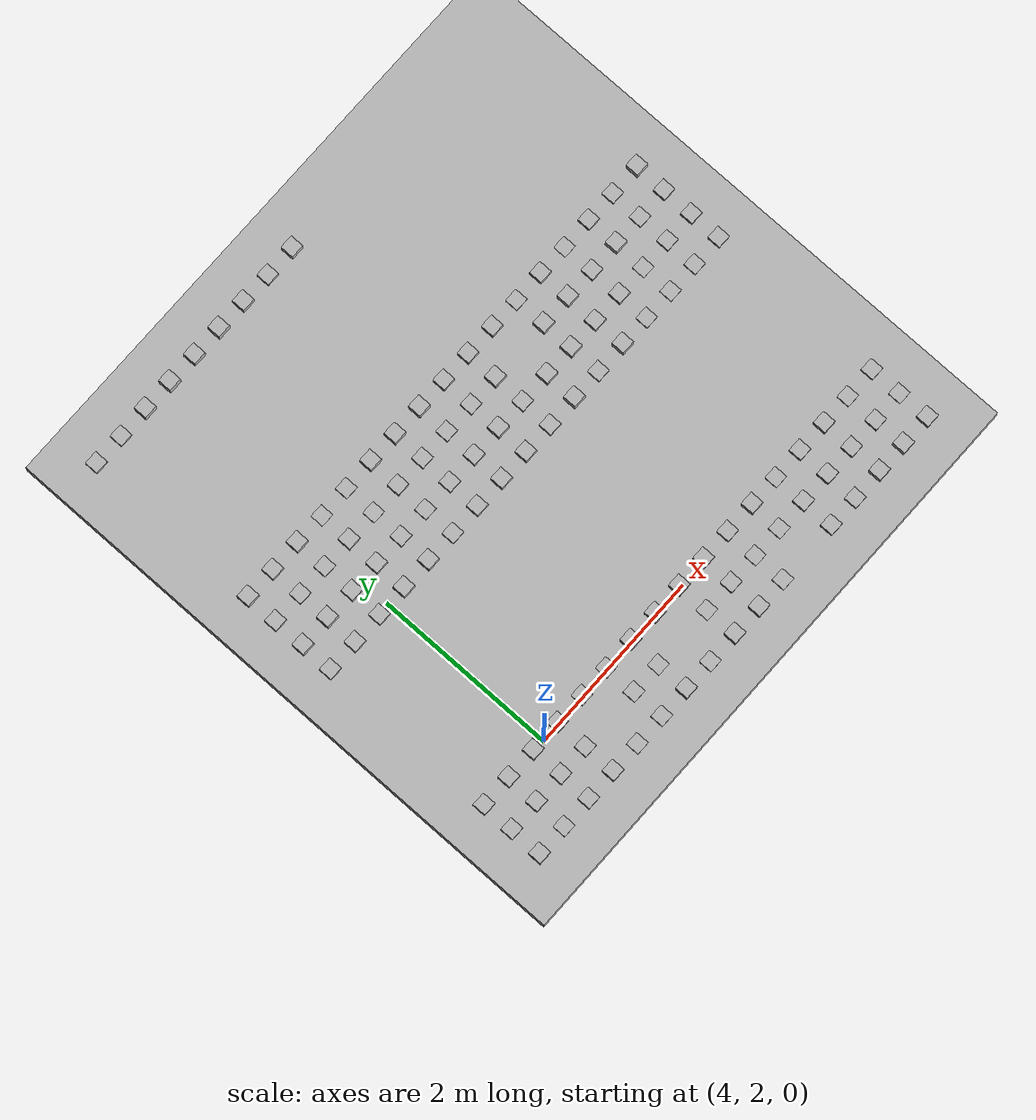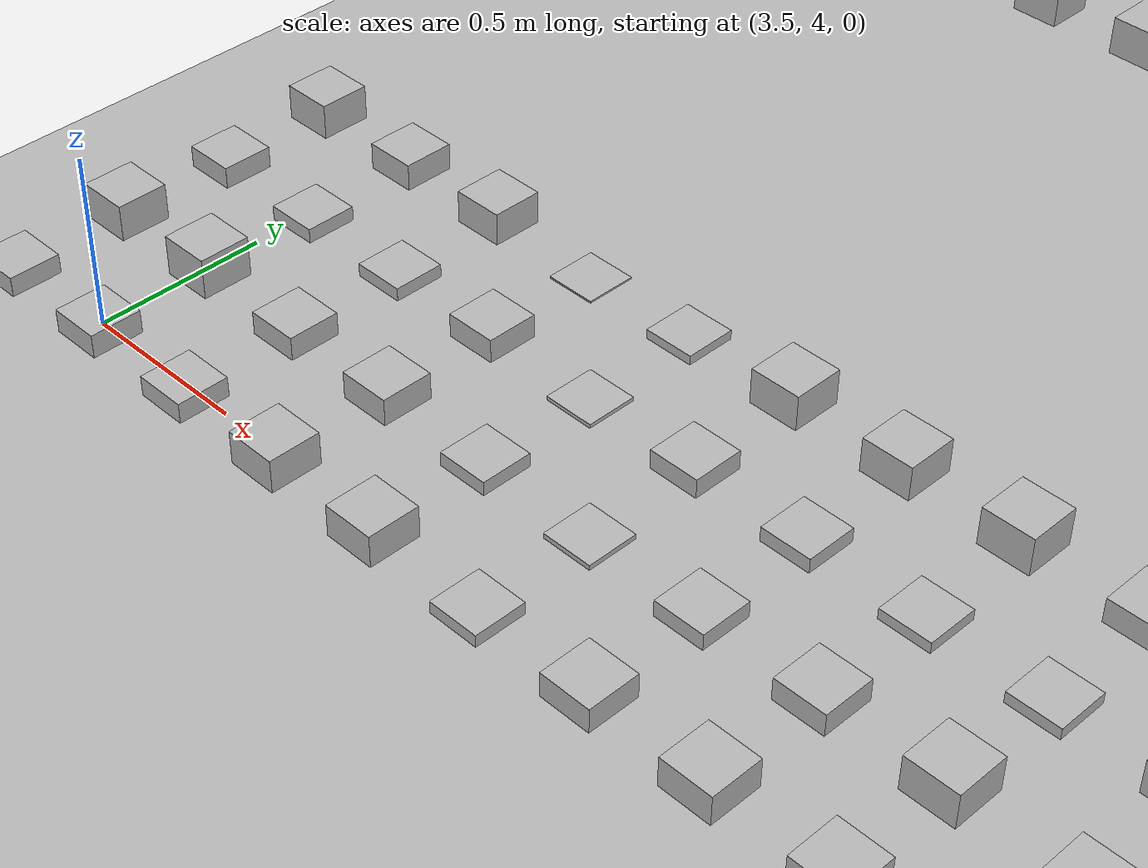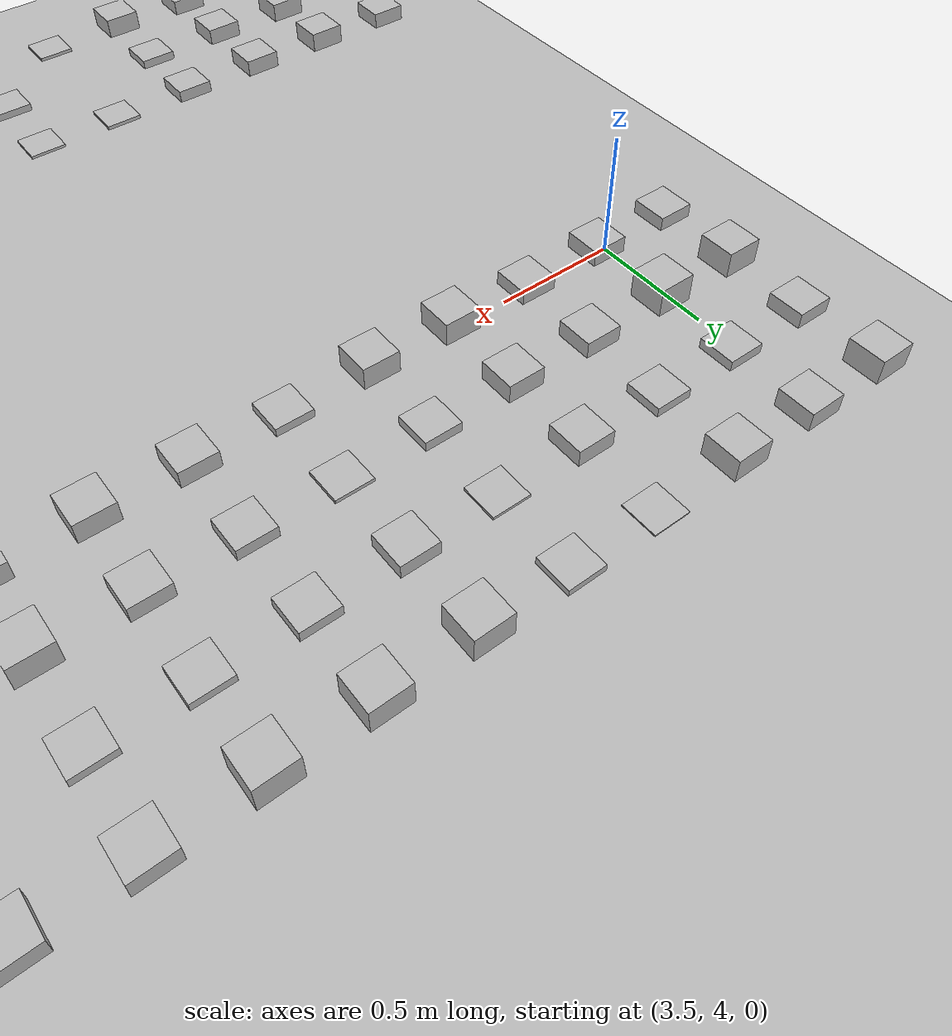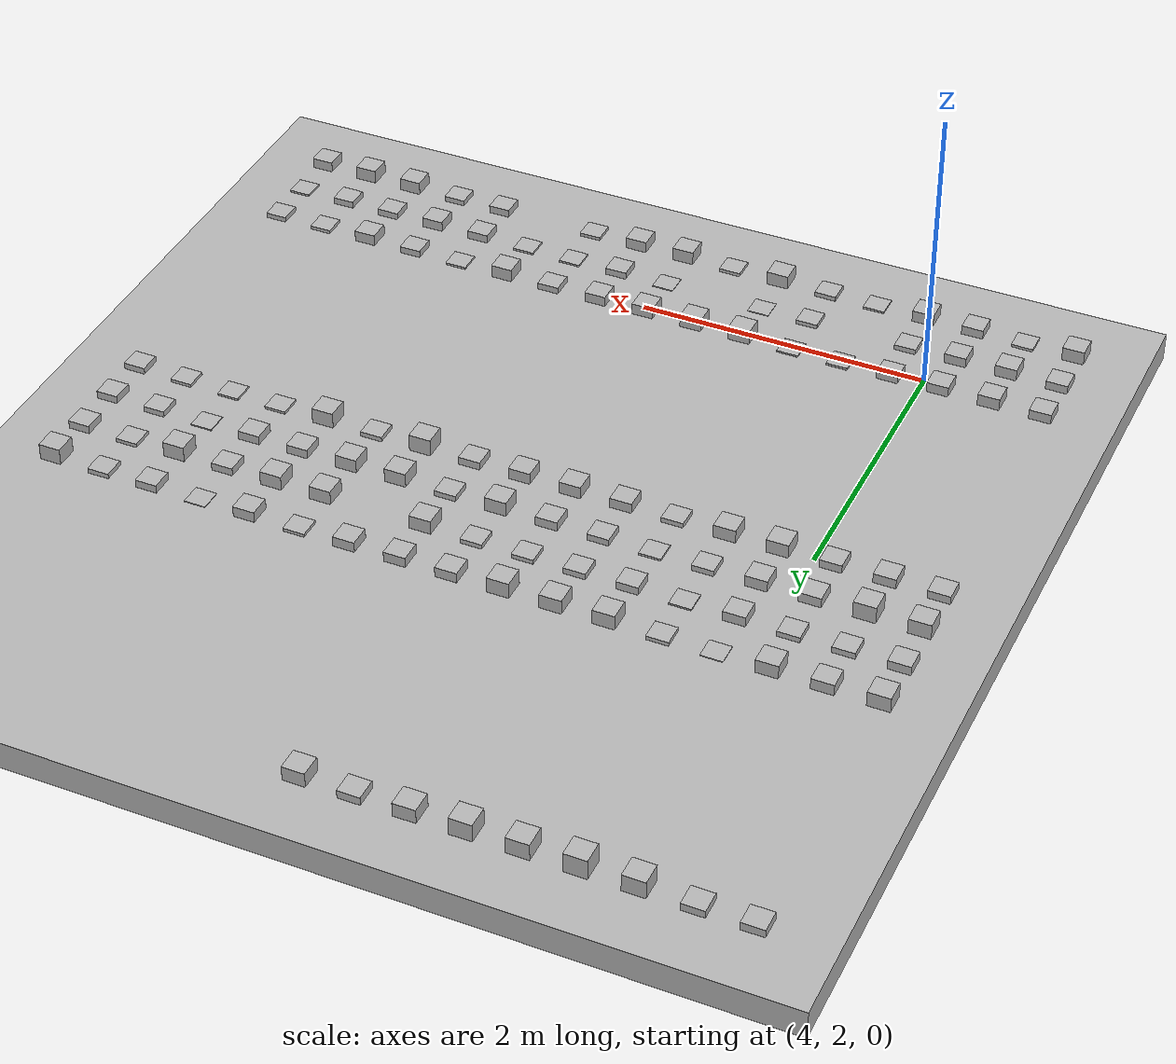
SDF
<sdf version="1.6">
 <world name="ugv_rough">
  <model name="ground">
   <static>true</static>
   <link name="l">
    <collision name="c"><geometry><box><size>60 60 0.2</size></box></geometry></collision>
    <visual name="v"><geometry><box><size>60 60 0.2</size></box></geometry></visual>
    <pose>0 0 -0.1 0 0 0</pose>
   </link>
  </model>
  <model name="r4_1">
   <static>true</static>
   <pose>3.175 1.325 0.0488 0 0 0</pose>
   <link name="l">
    <collision name="c"><geometry><box><size>0.15 0.15 0.09761073344853062</size></box></geometry></collision>
    <visual name="v"><geometry><box><size>0.15 0.15 0.09761073344853062</size></box></geometry></visual>
   </link>
  </model>
  <model name="r4_2">
   <static>true</static>
   <pose>3.175 1.675 0.0307 0 0 0</pose>
   <link name="l">
    <collision name="c"><geometry><box><size>0.15 0.15 0.06132800246752349</size></box></geometry></collision>
    <visual name="v"><geometry><box><size>0.15 0.15 0.06132800246752349</size></box></geometry></visual>
   </link>
  </model>
  <model name="r4_3">
   <static>true</static>
   <pose>3.175 2.025 0.0347 0 0 0</pose>
   <link name="l">
    <collision name="c"><geometry><box><size>0.15 0.15 0.0693042327978836</size></box></geometry></collision>
    <visual name="v"><geometry><box><size>0.15 0.15 0.0693042327978836</size></box></geometry></visual>
   </link>
  </model>
  <model name="r4_5">
   <static>true</static>
   <pose>3.525 1.325 0.0094 0 0 0</pose>
   <link name="l">
    <collision name="c"><geometry><box><size>0.15 0.15 0.01878115666855116</size></box></geometry></collision>
    <visual name="v"><geometry><box><size>0.15 0.15 0.01878115666855116</size></box></geometry></visual>
   </link>
  </model>
  <model name="r4_6">
   <static>true</static>
   <pose>3.525 1.675 0.0415 0 0 0</pose>
   <link name="l">
    <collision name="c"><geometry><box><size>0.15 0.15 0.08301218741450012</size></box></geometry></collision>
    <visual name="v"><geometry><box><size>0.15 0.15 0.08301218741450012</size></box></geometry></visual>
   </link>
  </model>
  <model name="r4_7">
   <static>true</static>
   <pose>3.525 2.025 0.0422 0 0 0</pose>
   <link name="l">
    <collision name="c"><geometry><box><size>0.15 0.15 0.08449241651217704</size></box></geometry></collision>
    <visual name="v"><geometry><box><size>0.15 0.15 0.08449241651217704</size></box></geometry></visual>
   </link>
  </model>
  <model name="r4_9">
   <static>true</static>
   <pose>3.875 1.325 0.0325 0 0 0</pose>
   <link name="l">
    <collision name="c"><geometry><box><size>0.15 0.15 0.06505169872996391</size></box></geometry></collision>
    <visual name="v"><geometry><box><size>0.15 0.15 0.06505169872996391</size></box></geometry></visual>
   </link>
  </model>
  <model name="r4_10">
   <static>true</static>
   <pose>3.875 1.675 0.0350 0 0 0</pose>
   <link name="l">
    <collision name="c"><geometry><box><size>0.15 0.15 0.07003316191510263</size></box></geometry></collision>
    <visual name="v"><geometry><box><size>0.15 0.15 0.07003316191510263</size></box></geometry></visual>
   </link>
  </model>
  <model name="r4_11">
   <static>true</static>
   <pose>3.875 2.025 0.0358 0 0 0</pose>
   <link name="l">
    <collision name="c"><geometry><box><size>0.15 0.15 0.07150339547653067</size></box></geometry></collision>
    <visual name="v"><geometry><box><size>0.15 0.15 0.07150339547653067</size></box></geometry></visual>
   </link>
  </model>
  <model name="r4_13">
   <static>true</static>
   <pose>4.225 1.325 0.0423 0 0 0</pose>
   <link name="l">
    <collision name="c"><geometry><box><size>0.15 0.15 0.08451978833841939</size></box></geometry></collision>
    <visual name="v"><geometry><box><size>0.15 0.15 0.08451978833841939</size></box></geometry></visual>
   </link>
  </model>
  <model name="r4_14">
   <static>true</static>
   <pose>4.225 1.675 0.0185 0 0 0</pose>
   <link name="l">
    <collision name="c"><geometry><box><size>0.15 0.15 0.03695849781386673</size></box></geometry></collision>
    <visual name="v"><geometry><box><size>0.15 0.15 0.03695849781386673</size></box></geometry></visual>
   </link>
  </model>
  <model name="r4_15">
   <static>true</static>
   <pose>4.225 2.025 0.0253 0 0 0</pose>
   <link name="l">
    <collision name="c"><geometry><box><size>0.15 0.15 0.050561499026373816</size></box></geometry></collision>
    <visual name="v"><geometry><box><size>0.15 0.15 0.050561499026373816</size></box></geometry></visual>
   </link>
  </model>
  <model name="r4_17">
   <static>true</static>
   <pose>4.575 1.325 0.0072 0 0 0</pose>
   <link name="l">
    <collision name="c"><geometry><box><size>0.15 0.15 0.014319015826691817</size></box></geometry></collision>
    <visual name="v"><geometry><box><size>0.15 0.15 0.014319015826691817</size></box></geometry></visual>
   </link>
  </model>
  <model name="r4_19">
   <static>true</static>
   <pose>4.575 2.025 0.0077 0 0 0</pose>
   <link name="l">
    <collision name="c"><geometry><box><size>0.15 0.15 0.015341588178909328</size></box></geometry></collision>
    <visual name="v"><geometry><box><size>0.15 0.15 0.015341588178909328</size></box></geometry></visual>
   </link>
  </model>
  <model name="r4_21">
   <static>true</static>
   <pose>4.925 1.325 0.0162 0 0 0</pose>
   <link name="l">
    <collision name="c"><geometry><box><size>0.15 0.15 0.03246336983988545</size></box></geometry></collision>
    <visual name="v"><geometry><box><size>0.15 0.15 0.03246336983988545</size></box></geometry></visual>
   </link>
  </model>
  <model name="r4_22">
   <static>true</static>
   <pose>4.925 1.675 0.0151 0 0 0</pose>
   <link name="l">
    <collision name="c"><geometry><box><size>0.15 0.15 0.03029175030516511</size></box></geometry></collision>
    <visual name="v"><geometry><box><size>0.15 0.15 0.03029175030516511</size></box></geometry></visual>
   </link>
  </model>
  <model name="r4_23">
   <static>true</static>
   <pose>4.925 2.025 0.0059 0 0 0</pose>
   <link name="l">
    <collision name="c"><geometry><box><size>0.15 0.15 0.011785699745257817</size></box></geometry></collision>
    <visual name="v"><geometry><box><size>0.15 0.15 0.011785699745257817</size></box></geometry></visual>
   </link>
  </model>
  <model name="r4_25">
   <static>true</static>
   <pose>5.275 1.325 0.0484 0 0 0</pose>
   <link name="l">
    <collision name="c"><geometry><box><size>0.15 0.15 0.09680758098639725</size></box></geometry></collision>
    <visual name="v"><geometry><box><size>0.15 0.15 0.09680758098639725</size></box></geometry></visual>
   </link>
  </model>
  <model name="r4_26">
   <static>true</static>
   <pose>5.275 1.675 0.0025 0 0 0</pose>
   <link name="l">
    <collision name="c"><geometry><box><size>0.15 0.15 0.005051541232897139</size></box></geometry></collision>
    <visual name="v"><geometry><box><size>0.15 0.15 0.005051541232897139</size></box></geometry></visual>
   </link>
  </model>
  <model name="r4_27">
   <static>true</static>
   <pose>5.275 2.025 0.0492 0 0 0</pose>
   <link name="l">
    <collision name="c"><geometry><box><size>0.15 0.15 0.09837100378798541</size></box></geometry></collision>
    <visual name="v"><geometry><box><size>0.15 0.15 0.09837100378798541</size></box></geometry></visual>
   </link>
  </model>
  <model name="r4_29">
   <static>true</static>
   <pose>5.625 1.325 0.0124 0 0 0</pose>
   <link name="l">
    <collision name="c"><geometry><box><size>0.15 0.15 0.024743605327022612</size></box></geometry></collision>
    <visual name="v"><geometry><box><size>0.15 0.15 0.024743605327022612</size></box></geometry></visual>
   </link>
  </model>
  <model name="r4_31">
   <static>true</static>
   <pose>5.625 2.025 0.0441 0 0 0</pose>
   <link name="l">
    <collision name="c"><geometry><box><size>0.15 0.15 0.08816507734170083</size></box></geometry></collision>
    <visual name="v"><geometry><box><size>0.15 0.15 0.08816507734170083</size></box></geometry></visual>
   </link>
  </model>
  <model name="r4_33">
   <static>true</static>
   <pose>5.975 1.325 0.0474 0 0 0</pose>
   <link name="l">
    <collision name="c"><geometry><box><size>0.15 0.15 0.0948399003178236</size></box></geometry></collision>
    <visual name="v"><geometry><box><size>0.15 0.15 0.0948399003178236</size></box></geometry></visual>
   </link>
  </model>
  <model name="r4_34">
   <static>true</static>
   <pose>5.975 1.675 0.0029 0 0 0</pose>
   <link name="l">
    <collision name="c"><geometry><box><size>0.15 0.15 0.005851121780149349</size></box></geometry></collision>
    <visual name="v"><geometry><box><size>0.15 0.15 0.005851121780149349</size></box></geometry></visual>
   </link>
  </model>
  <model name="r4_35">
   <static>true</static>
   <pose>5.975 2.025 0.0399 0 0 0</pose>
   <link name="l">
    <collision name="c"><geometry><box><size>0.15 0.15 0.07974936305528121</size></box></geometry></collision>
    <visual name="v"><geometry><box><size>0.15 0.15 0.07974936305528121</size></box></geometry></visual>
   </link>
  </model>
  <model name="r4_37">
   <static>true</static>
   <pose>6.325 1.325 0.0404 0 0 0</pose>
   <link name="l">
    <collision name="c"><geometry><box><size>0.15 0.15 0.0808839406246295</size></box></geometry></collision>
    <visual name="v"><geometry><box><size>0.15 0.15 0.0808839406246295</size></box></geometry></visual>
   </link>
  </model>
  <model name="r4_38">
   <static>true</static>
   <pose>6.325 1.675 0.0246 0 0 0</pose>
   <link name="l">
    <collision name="c"><geometry><box><size>0.15 0.15 0.04910678923283146</size></box></geometry></collision>
    <visual name="v"><geometry><box><size>0.15 0.15 0.04910678923283146</size></box></geometry></visual>
   </link>
  </model>
  <model name="r4_39">
   <static>true</static>
   <pose>6.325 2.025 0.0359 0 0 0</pose>
   <link name="l">
    <collision name="c"><geometry><box><size>0.15 0.15 0.07183875619927152</size></box></geometry></collision>
    <visual name="v"><geometry><box><size>0.15 0.15 0.07183875619927152</size></box></geometry></visual>
   </link>
  </model>
  <model name="r4_41">
   <static>true</static>
   <pose>6.675 1.325 0.0118 0 0 0</pose>
   <link name="l">
    <collision name="c"><geometry><box><size>0.15 0.15 0.02351173718838173</size></box></geometry></collision>
    <visual name="v"><geometry><box><size>0.15 0.15 0.02351173718838173</size></box></geometry></visual>
   </link>
  </model>
  <model name="r4_42">
   <static>true</static>
   <pose>6.675 1.675 0.0066 0 0 0</pose>
   <link name="l">
    <collision name="c"><geometry><box><size>0.15 0.15 0.013179454335673725</size></box></geometry></collision>
    <visual name="v"><geometry><box><size>0.15 0.15 0.013179454335673725</size></box></geometry></visual>
   </link>
  </model>
  <model name="r4_43">
   <static>true</static>
   <pose>6.675 2.025 0.0236 0 0 0</pose>
   <link name="l">
    <collision name="c"><geometry><box><size>0.15 0.15 0.04723554191986851</size></box></geometry></collision>
    <visual name="v"><geometry><box><size>0.15 0.15 0.04723554191986851</size></box></geometry></visual>
   </link>
  </model>
  <model name="r4_46">
   <static>true</static>
   <pose>7.025 1.675 0.0077 0 0 0</pose>
   <link name="l">
    <collision name="c"><geometry><box><size>0.15 0.15 0.015372078110124266</size></box></geometry></collision>
    <visual name="v"><geometry><box><size>0.15 0.15 0.015372078110124266</size></box></geometry></visual>
   </link>
  </model>
  <model name="r4_47">
   <static>true</static>
   <pose>7.025 2.025 0.0459 0 0 0</pose>
   <link name="l">
    <collision name="c"><geometry><box><size>0.15 0.15 0.09186126274153485</size></box></geometry></collision>
    <visual name="v"><geometry><box><size>0.15 0.15 0.09186126274153485</size></box></geometry></visual>
   </link>
  </model>
  <model name="r4_49">
   <static>true</static>
   <pose>7.375 1.325 0.0277 0 0 0</pose>
   <link name="l">
    <collision name="c"><geometry><box><size>0.15 0.15 0.05544157030510064</size></box></geometry></collision>
    <visual name="v"><geometry><box><size>0.15 0.15 0.05544157030510064</size></box></geometry></visual>
   </link>
  </model>
  <model name="r4_50">
   <static>true</static>
   <pose>7.375 1.675 0.0303 0 0 0</pose>
   <link name="l">
    <collision name="c"><geometry><box><size>0.15 0.15 0.060693791006048214</size></box></geometry></collision>
    <visual name="v"><geometry><box><size>0.15 0.15 0.060693791006048214</size></box></geometry></visual>
   </link>
  </model>
  <model name="r4_51">
   <static>true</static>
   <pose>7.375 2.025 0.0074 0 0 0</pose>
   <link name="l">
    <collision name="c"><geometry><box><size>0.15 0.15 0.014801757270189187</size></box></geometry></collision>
    <visual name="v"><geometry><box><size>0.15 0.15 0.014801757270189187</size></box></geometry></visual>
   </link>
  </model>
  <model name="r4_53">
   <static>true</static>
   <pose>7.725 1.325 0.0195 0 0 0</pose>
   <link name="l">
    <collision name="c"><geometry><box><size>0.15 0.15 0.03894963851306186</size></box></geometry></collision>
    <visual name="v"><geometry><box><size>0.15 0.15 0.03894963851306186</size></box></geometry></visual>
   </link>
  </model>
  <model name="r4_54">
   <static>true</static>
   <pose>7.725 1.675 0.0360 0 0 0</pose>
   <link name="l">
    <collision name="c"><geometry><box><size>0.15 0.15 0.0720992959617223</size></box></geometry></collision>
    <visual name="v"><geometry><box><size>0.15 0.15 0.0720992959617223</size></box></geometry></visual>
   </link>
  </model>
  <model name="r4_55">
   <static>true</static>
   <pose>7.725 2.025 0.0245 0 0 0</pose>
   <link name="l">
    <collision name="c"><geometry><box><size>0.15 0.15 0.048989961614799515</size></box></geometry></collision>
    <visual name="v"><geometry><box><size>0.15 0.15 0.048989961614799515</size></box></geometry></visual>
   </link>
  </model>
  <model name="r4_57">
   <static>true</static>
   <pose>8.075 1.325 0.0459 0 0 0</pose>
   <link name="l">
    <collision name="c"><geometry><box><size>0.15 0.15 0.0918887806964208</size></box></geometry></collision>
    <visual name="v"><geometry><box><size>0.15 0.15 0.0918887806964208</size></box></geometry></visual>
   </link>
  </model>
  <model name="r4_58">
   <static>true</static>
   <pose>8.075 1.675 0.0243 0 0 0</pose>
   <link name="l">
    <collision name="c"><geometry><box><size>0.15 0.15 0.04865729806977042</size></box></geometry></collision>
    <visual name="v"><geometry><box><size>0.15 0.15 0.04865729806977042</size></box></geometry></visual>
   </link>
  </model>
  <model name="r4_59">
   <static>true</static>
   <pose>8.075 2.025 0.0399 0 0 0</pose>
   <link name="l">
    <collision name="c"><geometry><box><size>0.15 0.15 0.07972300829849083</size></box></geometry></collision>
    <visual name="v"><geometry><box><size>0.15 0.15 0.07972300829849083</size></box></geometry></visual>
   </link>
  </model>
  <model name="r4_61">
   <static>true</static>
   <pose>8.425 1.325 0.0481 0 0 0</pose>
   <link name="l">
    <collision name="c"><geometry><box><size>0.15 0.15 0.0961016524120257</size></box></geometry></collision>
    <visual name="v"><geometry><box><size>0.15 0.15 0.0961016524120257</size></box></geometry></visual>
   </link>
  </model>
  <model name="r4_62">
   <static>true</static>
   <pose>8.425 1.675 0.0238 0 0 0</pose>
   <link name="l">
    <collision name="c"><geometry><box><size>0.15 0.15 0.047644799508871905</size></box></geometry></collision>
    <visual name="v"><geometry><box><size>0.15 0.15 0.047644799508871905</size></box></geometry></visual>
   </link>
  </model>
  <model name="r4_63">
   <static>true</static>
   <pose>8.425 2.025 0.0124 0 0 0</pose>
   <link name="l">
    <collision name="c"><geometry><box><size>0.15 0.15 0.024879011707166054</size></box></geometry></collision>
    <visual name="v"><geometry><box><size>0.15 0.15 0.024879011707166054</size></box></geometry></visual>
   </link>
  </model>
  <model name="r4_65">
   <static>true</static>
   <pose>8.775 1.325 0.0371 0 0 0</pose>
   <link name="l">
    <collision name="c"><geometry><box><size>0.15 0.15 0.07422259987799357</size></box></geometry></collision>
    <visual name="v"><geometry><box><size>0.15 0.15 0.07422259987799357</size></box></geometry></visual>
   </link>
  </model>
  <model name="r4_66">
   <static>true</static>
   <pose>8.775 1.675 0.0072 0 0 0</pose>
   <link name="l">
    <collision name="c"><geometry><box><size>0.15 0.15 0.014336464132504568</size></box></geometry></collision>
    <visual name="v"><geometry><box><size>0.15 0.15 0.014336464132504568</size></box></geometry></visual>
   </link>
  </model>
  <model name="r4_67">
   <static>true</static>
   <pose>8.775 2.025 0.0179 0 0 0</pose>
   <link name="l">
    <collision name="c"><geometry><box><size>0.15 0.15 0.035878157437782186</size></box></geometry></collision>
    <visual name="v"><geometry><box><size>0.15 0.15 0.035878157437782186</size></box></geometry></visual>
   </link>
  </model>
  <model name="r5_0">
   <static>true</static>
   <pose>3.175 3.975 0.0290 0 0 0</pose>
   <link name="l">
    <collision name="c"><geometry><box><size>0.15 0.15 0.05797324757832115</size></box></geometry></collision>
    <visual name="v"><geometry><box><size>0.15 0.15 0.05797324757832115</size></box></geometry></visual>
   </link>
  </model>
  <model name="r5_1">
   <static>true</static>
   <pose>3.175 4.325 0.0541 0 0 0</pose>
   <link name="l">
    <collision name="c"><geometry><box><size>0.15 0.15 0.10826195990962333</size></box></geometry></collision>
    <visual name="v"><geometry><box><size>0.15 0.15 0.10826195990962333</size></box></geometry></visual>
   </link>
  </model>
  <model name="r5_2">
   <static>true</static>
   <pose>3.175 4.675 0.0322 0 0 0</pose>
   <link name="l">
    <collision name="c"><geometry><box><size>0.15 0.15 0.0644948632215437</size></box></geometry></collision>
    <visual name="v"><geometry><box><size>0.15 0.15 0.0644948632215437</size></box></geometry></visual>
   </link>
  </model>
  <model name="r5_3">
   <static>true</static>
   <pose>3.175 5.025 0.0526 0 0 0</pose>
   <link name="l">
    <collision name="c"><geometry><box><size>0.15 0.15 0.10513609165813428</size></box></geometry></collision>
    <visual name="v"><geometry><box><size>0.15 0.15 0.10513609165813428</size></box></geometry></visual>
   </link>
  </model>
  <model name="r5_4">
   <static>true</static>
   <pose>3.525 3.975 0.0344 0 0 0</pose>
   <link name="l">
    <collision name="c"><geometry><box><size>0.15 0.15 0.06877883312498809</size></box></geometry></collision>
    <visual name="v"><geometry><box><size>0.15 0.15 0.06877883312498809</size></box></geometry></visual>
   </link>
  </model>
  <model name="r5_5">
   <static>true</static>
   <pose>3.525 4.325 0.0597 0 0 0</pose>
   <link name="l">
    <collision name="c"><geometry><box><size>0.15 0.15 0.11934286174216824</size></box></geometry></collision>
    <visual name="v"><geometry><box><size>0.15 0.15 0.11934286174216824</size></box></geometry></visual>
   </link>
  </model>
  <model name="r5_6">
   <static>true</static>
   <pose>3.525 4.675 0.0214 0 0 0</pose>
   <link name="l">
    <collision name="c"><geometry><box><size>0.15 0.15 0.042893588438283656</size></box></geometry></collision>
    <visual name="v"><geometry><box><size>0.15 0.15 0.042893588438283656</size></box></geometry></visual>
   </link>
  </model>
  <model name="r5_7">
   <static>true</static>
   <pose>3.525 5.025 0.0397 0 0 0</pose>
   <link name="l">
    <collision name="c"><geometry><box><size>0.15 0.15 0.0794075955559667</size></box></geometry></collision>
    <visual name="v"><geometry><box><size>0.15 0.15 0.0794075955559667</size></box></geometry></visual>
   </link>
  </model>
  <model name="r5_8">
   <static>true</static>
   <pose>3.875 3.975 0.0293 0 0 0</pose>
   <link name="l">
    <collision name="c"><geometry><box><size>0.15 0.15 0.05859446715346389</size></box></geometry></collision>
    <visual name="v"><geometry><box><size>0.15 0.15 0.05859446715346389</size></box></geometry></visual>
   </link>
  </model>
  <model name="r5_9">
   <static>true</static>
   <pose>3.875 4.325 0.0344 0 0 0</pose>
   <link name="l">
    <collision name="c"><geometry><box><size>0.15 0.15 0.06871695389732527</size></box></geometry></collision>
    <visual name="v"><geometry><box><size>0.15 0.15 0.06871695389732527</size></box></geometry></visual>
   </link>
  </model>
  <model name="r5_10">
   <static>true</static>
   <pose>3.875 4.675 0.0194 0 0 0</pose>
   <link name="l">
    <collision name="c"><geometry><box><size>0.15 0.15 0.03886607799016721</size></box></geometry></collision>
    <visual name="v"><geometry><box><size>0.15 0.15 0.03886607799016721</size></box></geometry></visual>
   </link>
  </model>
  <model name="r5_11">
   <static>true</static>
   <pose>3.875 5.025 0.0484 0 0 0</pose>
   <link name="l">
    <collision name="c"><geometry><box><size>0.15 0.15 0.09686825413156239</size></box></geometry></collision>
    <visual name="v"><geometry><box><size>0.15 0.15 0.09686825413156239</size></box></geometry></visual>
   </link>
  </model>
  <model name="r5_12">
   <static>true</static>
   <pose>4.225 3.975 0.0485 0 0 0</pose>
   <link name="l">
    <collision name="c"><geometry><box><size>0.15 0.15 0.09704788866956332</size></box></geometry></collision>
    <visual name="v"><geometry><box><size>0.15 0.15 0.09704788866956332</size></box></geometry></visual>
   </link>
  </model>
  <model name="r5_13">
   <static>true</static>
   <pose>4.225 4.325 0.0397 0 0 0</pose>
   <link name="l">
    <collision name="c"><geometry><box><size>0.15 0.15 0.07930229425810008</size></box></geometry></collision>
    <visual name="v"><geometry><box><size>0.15 0.15 0.07930229425810008</size></box></geometry></visual>
   </link>
  </model>
  <model name="r5_14">
   <static>true</static>
   <pose>4.225 4.675 0.0348 0 0 0</pose>
   <link name="l">
    <collision name="c"><geometry><box><size>0.15 0.15 0.06963092725957762</size></box></geometry></collision>
    <visual name="v"><geometry><box><size>0.15 0.15 0.06963092725957762</size></box></geometry></visual>
   </link>
  </model>
  <model name="r5_15">
   <static>true</static>
   <pose>4.225 5.025 0.0026 0 0 0</pose>
   <link name="l">
    <collision name="c"><geometry><box><size>0.15 0.15 0.005290367868829495</size></box></geometry></collision>
    <visual name="v"><geometry><box><size>0.15 0.15 0.005290367868829495</size></box></geometry></visual>
   </link>
  </model>
  <model name="r5_16">
   <static>true</static>
   <pose>4.575 3.975 0.0464 0 0 0</pose>
   <link name="l">
    <collision name="c"><geometry><box><size>0.15 0.15 0.09270763193549797</size></box></geometry></collision>
    <visual name="v"><geometry><box><size>0.15 0.15 0.09270763193549797</size></box></geometry></visual>
   </link>
  </model>
  <model name="r5_17">
   <static>true</static>
   <pose>4.575 4.325 0.0204 0 0 0</pose>
   <link name="l">
    <collision name="c"><geometry><box><size>0.15 0.15 0.04082177861691372</size></box></geometry></collision>
    <visual name="v"><geometry><box><size>0.15 0.15 0.04082177861691372</size></box></geometry></visual>
   </link>
  </model>
  <model name="r5_18">
   <static>true</static>
   <pose>4.575 4.675 0.0057 0 0 0</pose>
   <link name="l">
    <collision name="c"><geometry><box><size>0.15 0.15 0.011407229541242708</size></box></geometry></collision>
    <visual name="v"><geometry><box><size>0.15 0.15 0.011407229541242708</size></box></geometry></visual>
   </link>
  </model>
  <model name="r5_19">
   <static>true</static>
   <pose>4.575 5.025 0.0139 0 0 0</pose>
   <link name="l">
    <collision name="c"><geometry><box><size>0.15 0.15 0.02785772241970538</size></box></geometry></collision>
    <visual name="v"><geometry><box><size>0.15 0.15 0.02785772241970538</size></box></geometry></visual>
   </link>
  </model>
  <model name="r5_20">
   <static>true</static>
   <pose>4.925 3.975 0.0177 0 0 0</pose>
   <link name="l">
    <collision name="c"><geometry><box><size>0.15 0.15 0.03541014937955278</size></box></geometry></collision>
    <visual name="v"><geometry><box><size>0.15 0.15 0.03541014937955278</size></box></geometry></visual>
   </link>
  </model>
  <model name="r5_21">
   <static>true</static>
   <pose>4.925 4.325 0.0074 0 0 0</pose>
   <link name="l">
    <collision name="c"><geometry><box><size>0.15 0.15 0.014732401262743661</size></box></geometry></collision>
    <visual name="v"><geometry><box><size>0.15 0.15 0.014732401262743661</size></box></geometry></visual>
   </link>
  </model>
  <model name="r5_22">
   <static>true</static>
   <pose>4.925 4.675 0.0284 0 0 0</pose>
   <link name="l">
    <collision name="c"><geometry><box><size>0.15 0.15 0.056816851083524765</size></box></geometry></collision>
    <visual name="v"><geometry><box><size>0.15 0.15 0.056816851083524765</size></box></geometry></visual>
   </link>
  </model>
  <model name="r5_23">
   <static>true</static>
   <pose>4.925 5.025 0.0524 0 0 0</pose>
   <link name="l">
    <collision name="c"><geometry><box><size>0.15 0.15 0.10487234987481525</size></box></geometry></collision>
    <visual name="v"><geometry><box><size>0.15 0.15 0.10487234987481525</size></box></geometry></visual>
   </link>
  </model>
  <model name="r5_24">
   <static>true</static>
   <pose>5.275 3.975 0.0357 0 0 0</pose>
   <link name="l">
    <collision name="c"><geometry><box><size>0.15 0.15 0.07131586691003941</size></box></geometry></collision>
    <visual name="v"><geometry><box><size>0.15 0.15 0.07131586691003941</size></box></geometry></visual>
   </link>
  </model>
  <model name="r5_25">
   <static>true</static>
   <pose>5.275 4.325 0.0236 0 0 0</pose>
   <link name="l">
    <collision name="c"><geometry><box><size>0.15 0.15 0.04719164101242104</size></box></geometry></collision>
    <visual name="v"><geometry><box><size>0.15 0.15 0.04719164101242104</size></box></geometry></visual>
   </link>
  </model>
  <model name="r5_26">
   <static>true</static>
   <pose>5.275 4.675 0.0214 0 0 0</pose>
   <link name="l">
    <collision name="c"><geometry><box><size>0.15 0.15 0.04275144333827772</size></box></geometry></collision>
    <visual name="v"><geometry><box><size>0.15 0.15 0.04275144333827772</size></box></geometry></visual>
   </link>
  </model>
  <model name="r5_27">
   <static>true</static>
   <pose>5.275 5.025 0.0507 0 0 0</pose>
   <link name="l">
    <collision name="c"><geometry><box><size>0.15 0.15 0.10131974628359598</size></box></geometry></collision>
    <visual name="v"><geometry><box><size>0.15 0.15 0.10131974628359598</size></box></geometry></visual>
   </link>
  </model>
  <model name="r5_28">
   <static>true</static>
   <pose>5.625 3.975 0.0428 0 0 0</pose>
   <link name="l">
    <collision name="c"><geometry><box><size>0.15 0.15 0.08565321733948585</size></box></geometry></collision>
    <visual name="v"><geometry><box><size>0.15 0.15 0.08565321733948585</size></box></geometry></visual>
   </link>
  </model>
  <model name="r5_29">
   <static>true</static>
   <pose>5.625 4.325 0.0325 0 0 0</pose>
   <link name="l">
    <collision name="c"><geometry><box><size>0.15 0.15 0.06499799523993335</size></box></geometry></collision>
    <visual name="v"><geometry><box><size>0.15 0.15 0.06499799523993335</size></box></geometry></visual>
   </link>
  </model>
  <model name="r5_30">
   <static>true</static>
   <pose>5.625 4.675 0.0159 0 0 0</pose>
   <link name="l">
    <collision name="c"><geometry><box><size>0.15 0.15 0.031892993860032075</size></box></geometry></collision>
    <visual name="v"><geometry><box><size>0.15 0.15 0.031892993860032075</size></box></geometry></visual>
   </link>
  </model>
  <model name="r5_31">
   <static>true</static>
   <pose>5.625 5.025 0.0558 0 0 0</pose>
   <link name="l">
    <collision name="c"><geometry><box><size>0.15 0.15 0.11164423824220732</size></box></geometry></collision>
    <visual name="v"><geometry><box><size>0.15 0.15 0.11164423824220732</size></box></geometry></visual>
   </link>
  </model>
  <model name="r5_32">
   <static>true</static>
   <pose>5.975 3.975 0.0399 0 0 0</pose>
   <link name="l">
    <collision name="c"><geometry><box><size>0.15 0.15 0.07976443586255066</size></box></geometry></collision>
    <visual name="v"><geometry><box><size>0.15 0.15 0.07976443586255066</size></box></geometry></visual>
   </link>
  </model>
  <model name="r5_33">
   <static>true</static>
   <pose>5.975 4.325 0.0509 0 0 0</pose>
   <link name="l">
    <collision name="c"><geometry><box><size>0.15 0.15 0.10177514249383442</size></box></geometry></collision>
    <visual name="v"><geometry><box><size>0.15 0.15 0.10177514249383442</size></box></geometry></visual>
   </link>
  </model>
  <model name="r5_34">
   <static>true</static>
   <pose>5.975 4.675 0.0165 0 0 0</pose>
   <link name="l">
    <collision name="c"><geometry><box><size>0.15 0.15 0.032916276829704265</size></box></geometry></collision>
    <visual name="v"><geometry><box><size>0.15 0.15 0.032916276829704265</size></box></geometry></visual>
   </link>
  </model>
  <model name="r5_35">
   <static>true</static>
   <pose>5.975 5.025 0.0359 0 0 0</pose>
   <link name="l">
    <collision name="c"><geometry><box><size>0.15 0.15 0.07185427350416616</size></box></geometry></collision>
    <visual name="v"><geometry><box><size>0.15 0.15 0.07185427350416616</size></box></geometry></visual>
   </link>
  </model>
  <model name="r5_36">
   <static>true</static>
   <pose>6.325 3.975 0.0274 0 0 0</pose>
   <link name="l">
    <collision name="c"><geometry><box><size>0.15 0.15 0.05483308772238712</size></box></geometry></collision>
    <visual name="v"><geometry><box><size>0.15 0.15 0.05483308772238712</size></box></geometry></visual>
   </link>
  </model>
  <model name="r5_37">
   <static>true</static>
   <pose>6.325 4.325 0.0199 0 0 0</pose>
   <link name="l">
    <collision name="c"><geometry><box><size>0.15 0.15 0.03985632643833429</size></box></geometry></collision>
    <visual name="v"><geometry><box><size>0.15 0.15 0.03985632643833429</size></box></geometry></visual>
   </link>
  </model>
  <model name="r5_38">
   <static>true</static>
   <pose>6.325 4.675 0.0488 0 0 0</pose>
   <link name="l">
    <collision name="c"><geometry><box><size>0.15 0.15 0.09751617039717239</size></box></geometry></collision>
    <visual name="v"><geometry><box><size>0.15 0.15 0.09751617039717239</size></box></geometry></visual>
   </link>
  </model>
  <model name="r5_39">
   <static>true</static>
   <pose>6.325 5.025 0.0358 0 0 0</pose>
   <link name="l">
    <collision name="c"><geometry><box><size>0.15 0.15 0.07157929846207006</size></box></geometry></collision>
    <visual name="v"><geometry><box><size>0.15 0.15 0.07157929846207006</size></box></geometry></visual>
   </link>
  </model>
  <model name="r5_40">
   <static>true</static>
   <pose>6.675 3.975 0.0597 0 0 0</pose>
   <link name="l">
    <collision name="c"><geometry><box><size>0.15 0.15 0.11937466877502885</size></box></geometry></collision>
    <visual name="v"><geometry><box><size>0.15 0.15 0.11937466877502885</size></box></geometry></visual>
   </link>
  </model>
  <model name="r5_41">
   <static>true</static>
   <pose>6.675 4.325 0.0497 0 0 0</pose>
   <link name="l">
    <collision name="c"><geometry><box><size>0.15 0.15 0.09944485898203297</size></box></geometry></collision>
    <visual name="v"><geometry><box><size>0.15 0.15 0.09944485898203297</size></box></geometry></visual>
   </link>
  </model>
  <model name="r5_43">
   <static>true</static>
   <pose>6.675 5.025 0.0366 0 0 0</pose>
   <link name="l">
    <collision name="c"><geometry><box><size>0.15 0.15 0.07320765441498121</size></box></geometry></collision>
    <visual name="v"><geometry><box><size>0.15 0.15 0.07320765441498121</size></box></geometry></visual>
   </link>
  </model>
  <model name="r5_44">
   <static>true</static>
   <pose>7.025 3.975 0.0173 0 0 0</pose>
   <link name="l">
    <collision name="c"><geometry><box><size>0.15 0.15 0.0345050870347149</size></box></geometry></collision>
    <visual name="v"><geometry><box><size>0.15 0.15 0.0345050870347149</size></box></geometry></visual>
   </link>
  </model>
  <model name="r5_45">
   <static>true</static>
   <pose>7.025 4.325 0.0479 0 0 0</pose>
   <link name="l">
    <collision name="c"><geometry><box><size>0.15 0.15 0.0958407938720329</size></box></geometry></collision>
    <visual name="v"><geometry><box><size>0.15 0.15 0.0958407938720329</size></box></geometry></visual>
   </link>
  </model>
  <model name="r5_46">
   <static>true</static>
   <pose>7.025 4.675 0.0490 0 0 0</pose>
   <link name="l">
    <collision name="c"><geometry><box><size>0.15 0.15 0.09809405437107248</size></box></geometry></collision>
    <visual name="v"><geometry><box><size>0.15 0.15 0.09809405437107248</size></box></geometry></visual>
   </link>
  </model>
  <model name="r5_47">
   <static>true</static>
   <pose>7.025 5.025 0.0114 0 0 0</pose>
   <link name="l">
    <collision name="c"><geometry><box><size>0.15 0.15 0.02272900755617143</size></box></geometry></collision>
    <visual name="v"><geometry><box><size>0.15 0.15 0.02272900755617143</size></box></geometry></visual>
   </link>
  </model>
  <model name="r5_48">
   <static>true</static>
   <pose>7.375 3.975 0.0555 0 0 0</pose>
   <link name="l">
    <collision name="c"><geometry><box><size>0.15 0.15 0.1110114182218143</size></box></geometry></collision>
    <visual name="v"><geometry><box><size>0.15 0.15 0.1110114182218143</size></box></geometry></visual>
   </link>
  </model>
  <model name="r5_49">
   <static>true</static>
   <pose>7.375 4.325 0.0322 0 0 0</pose>
   <link name="l">
    <collision name="c"><geometry><box><size>0.15 0.15 0.06447797002240094</size></box></geometry></collision>
    <visual name="v"><geometry><box><size>0.15 0.15 0.06447797002240094</size></box></geometry></visual>
   </link>
  </model>
  <model name="r5_50">
   <static>true</static>
   <pose>7.375 4.675 0.0502 0 0 0</pose>
   <link name="l">
    <collision name="c"><geometry><box><size>0.15 0.15 0.10038333418946296</size></box></geometry></collision>
    <visual name="v"><geometry><box><size>0.15 0.15 0.10038333418946296</size></box></geometry></visual>
   </link>
  </model>
  <model name="r5_51">
   <static>true</static>
   <pose>7.375 5.025 0.0379 0 0 0</pose>
   <link name="l">
    <collision name="c"><geometry><box><size>0.15 0.15 0.07580297100213639</size></box></geometry></collision>
    <visual name="v"><geometry><box><size>0.15 0.15 0.07580297100213639</size></box></geometry></visual>
   </link>
  </model>
  <model name="r5_52">
   <static>true</static>
   <pose>7.725 3.975 0.0091 0 0 0</pose>
   <link name="l">
    <collision name="c"><geometry><box><size>0.15 0.15 0.01822084131924838</size></box></geometry></collision>
    <visual name="v"><geometry><box><size>0.15 0.15 0.01822084131924838</size></box></geometry></visual>
   </link>
  </model>
  <model name="r5_53">
   <static>true</static>
   <pose>7.725 4.325 0.0317 0 0 0</pose>
   <link name="l">
    <collision name="c"><geometry><box><size>0.15 0.15 0.06337995440534287</size></box></geometry></collision>
    <visual name="v"><geometry><box><size>0.15 0.15 0.06337995440534287</size></box></geometry></visual>
   </link>
  </model>
  <model name="r5_54">
   <static>true</static>
   <pose>7.725 4.675 0.0275 0 0 0</pose>
   <link name="l">
    <collision name="c"><geometry><box><size>0.15 0.15 0.0550014156350901</size></box></geometry></collision>
    <visual name="v"><geometry><box><size>0.15 0.15 0.0550014156350901</size></box></geometry></visual>
   </link>
  </model>
  <model name="r5_55">
   <static>true</static>
   <pose>7.725 5.025 0.0025 0 0 0</pose>
   <link name="l">
    <collision name="c"><geometry><box><size>0.15 0.15 0.0050767575607269765</size></box></geometry></collision>
    <visual name="v"><geometry><box><size>0.15 0.15 0.0050767575607269765</size></box></geometry></visual>
   </link>
  </model>
  <model name="r5_56">
   <static>true</static>
   <pose>8.075 3.975 0.0075 0 0 0</pose>
   <link name="l">
    <collision name="c"><geometry><box><size>0.15 0.15 0.015097158943290804</size></box></geometry></collision>
    <visual name="v"><geometry><box><size>0.15 0.15 0.015097158943290804</size></box></geometry></visual>
   </link>
  </model>
  <model name="r5_57">
   <static>true</static>
   <pose>8.075 4.325 0.0039 0 0 0</pose>
   <link name="l">
    <collision name="c"><geometry><box><size>0.15 0.15 0.00789844057474046</size></box></geometry></collision>
    <visual name="v"><geometry><box><size>0.15 0.15 0.00789844057474046</size></box></geometry></visual>
   </link>
  </model>
  <model name="r5_58">
   <static>true</static>
   <pose>8.075 4.675 0.0538 0 0 0</pose>
   <link name="l">
    <collision name="c"><geometry><box><size>0.15 0.15 0.10769035261684871</size></box></geometry></collision>
    <visual name="v"><geometry><box><size>0.15 0.15 0.10769035261684871</size></box></geometry></visual>
   </link>
  </model>
  <model name="r5_59">
   <static>true</static>
   <pose>8.075 5.025 0.0284 0 0 0</pose>
   <link name="l">
    <collision name="c"><geometry><box><size>0.15 0.15 0.05672651842393162</size></box></geometry></collision>
    <visual name="v"><geometry><box><size>0.15 0.15 0.05672651842393162</size></box></geometry></visual>
   </link>
  </model>
  <model name="r5_60">
   <static>true</static>
   <pose>8.425 3.975 0.0114 0 0 0</pose>
   <link name="l">
    <collision name="c"><geometry><box><size>0.15 0.15 0.022804246512287695</size></box></geometry></collision>
    <visual name="v"><geometry><box><size>0.15 0.15 0.022804246512287695</size></box></geometry></visual>
   </link>
  </model>
  <model name="r5_61">
   <static>true</static>
   <pose>8.425 4.325 0.0206 0 0 0</pose>
   <link name="l">
    <collision name="c"><geometry><box><size>0.15 0.15 0.041100610936923264</size></box></geometry></collision>
    <visual name="v"><geometry><box><size>0.15 0.15 0.041100610936923264</size></box></geometry></visual>
   </link>
  </model>
  <model name="r5_62">
   <static>true</static>
   <pose>8.425 4.675 0.0135 0 0 0</pose>
   <link name="l">
    <collision name="c"><geometry><box><size>0.15 0.15 0.02699621751817167</size></box></geometry></collision>
    <visual name="v"><geometry><box><size>0.15 0.15 0.02699621751817167</size></box></geometry></visual>
   </link>
  </model>
  <model name="r5_63">
   <static>true</static>
   <pose>8.425 5.025 0.0176 0 0 0</pose>
   <link name="l">
    <collision name="c"><geometry><box><size>0.15 0.15 0.03520762560660048</size></box></geometry></collision>
    <visual name="v"><geometry><box><size>0.15 0.15 0.03520762560660048</size></box></geometry></visual>
   </link>
  </model>
  <model name="r5_64">
   <static>true</static>
   <pose>8.775 3.975 0.0225 0 0 0</pose>
   <link name="l">
    <collision name="c"><geometry><box><size>0.15 0.15 0.045044920415305875</size></box></geometry></collision>
    <visual name="v"><geometry><box><size>0.15 0.15 0.045044920415305875</size></box></geometry></visual>
   </link>
  </model>
  <model name="r5_65">
   <static>true</static>
   <pose>8.775 4.325 0.0276 0 0 0</pose>
   <link name="l">
    <collision name="c"><geometry><box><size>0.15 0.15 0.05519683273191522</size></box></geometry></collision>
    <visual name="v"><geometry><box><size>0.15 0.15 0.05519683273191522</size></box></geometry></visual>
   </link>
  </model>
  <model name="r5_66">
   <static>true</static>
   <pose>8.775 4.675 0.0288 0 0 0</pose>
   <link name="l">
    <collision name="c"><geometry><box><size>0.15 0.15 0.05753857140232364</size></box></geometry></collision>
    <visual name="v"><geometry><box><size>0.15 0.15 0.05753857140232364</size></box></geometry></visual>
   </link>
  </model>
  <model name="r5_67">
   <static>true</static>
   <pose>8.775 5.025 0.0575 0 0 0</pose>
   <link name="l">
    <collision name="c"><geometry><box><size>0.15 0.15 0.11502877104125304</size></box></geometry></collision>
    <visual name="v"><geometry><box><size>0.15 0.15 0.11502877104125304</size></box></geometry></visual>
   </link>
  </model>
  <model name="r6_0">
   <static>true</static>
   <pose>3.175 6.975 0.0277 0 0 0</pose>
   <link name="l">
    <collision name="c"><geometry><box><size>0.15 0.15 0.055459193057828315</size></box></geometry></collision>
    <visual name="v"><geometry><box><size>0.15 0.15 0.055459193057828315</size></box></geometry></visual>
   </link>
  </model>
  <model name="r6_4">
   <static>true</static>
   <pose>3.525 6.975 0.0258 0 0 0</pose>
   <link name="l">
    <collision name="c"><geometry><box><size>0.15 0.15 0.05160233218592378</size></box></geometry></collision>
    <visual name="v"><geometry><box><size>0.15 0.15 0.05160233218592378</size></box></geometry></visual>
   </link>
  </model>
  <model name="r6_8">
   <static>true</static>
   <pose>3.875 6.975 0.0610 0 0 0</pose>
   <link name="l">
    <collision name="c"><geometry><box><size>0.15 0.15 0.12205155369947521</size></box></geometry></collision>
    <visual name="v"><geometry><box><size>0.15 0.15 0.12205155369947521</size></box></geometry></visual>
   </link>
  </model>
  <model name="r6_12">
   <static>true</static>
   <pose>4.225 6.975 0.0698 0 0 0</pose>
   <link name="l">
    <collision name="c"><geometry><box><size>0.15 0.15 0.13960102442466707</size></box></geometry></collision>
    <visual name="v"><geometry><box><size>0.15 0.15 0.13960102442466707</size></box></geometry></visual>
   </link>
  </model>
  <model name="r6_16">
   <static>true</static>
   <pose>4.575 6.975 0.0591 0 0 0</pose>
   <link name="l">
    <collision name="c"><geometry><box><size>0.15 0.15 0.11816127179839397</size></box></geometry></collision>
    <visual name="v"><geometry><box><size>0.15 0.15 0.11816127179839397</size></box></geometry></visual>
   </link>
  </model>
  <model name="r6_20">
   <static>true</static>
   <pose>4.925 6.975 0.0627 0 0 0</pose>
   <link name="l">
    <collision name="c"><geometry><box><size>0.15 0.15 0.12532419477537782</size></box></geometry></collision>
    <visual name="v"><geometry><box><size>0.15 0.15 0.12532419477537782</size></box></geometry></visual>
   </link>
  </model>
  <model name="r6_24">
   <static>true</static>
   <pose>5.275 6.975 0.0494 0 0 0</pose>
   <link name="l">
    <collision name="c"><geometry><box><size>0.15 0.15 0.09871682451458369</size></box></geometry></collision>
    <visual name="v"><geometry><box><size>0.15 0.15 0.09871682451458369</size></box></geometry></visual>
   </link>
  </model>
  <model name="r6_28">
   <static>true</static>
   <pose>5.625 6.975 0.0284 0 0 0</pose>
   <link name="l">
    <collision name="c"><geometry><box><size>0.15 0.15 0.05677330174958213</size></box></geometry></collision>
    <visual name="v"><geometry><box><size>0.15 0.15 0.05677330174958213</size></box></geometry></visual>
   </link>
  </model>
  <model name="r6_32">
   <static>true</static>
   <pose>5.975 6.975 0.0512 0 0 0</pose>
   <link name="l">
    <collision name="c"><geometry><box><size>0.15 0.15 0.10234820552580161</size></box></geometry></collision>
    <visual name="v"><geometry><box><size>0.15 0.15 0.10234820552580161</size></box></geometry></visual>
   </link>
  </model>
 </world>
</sdf>
